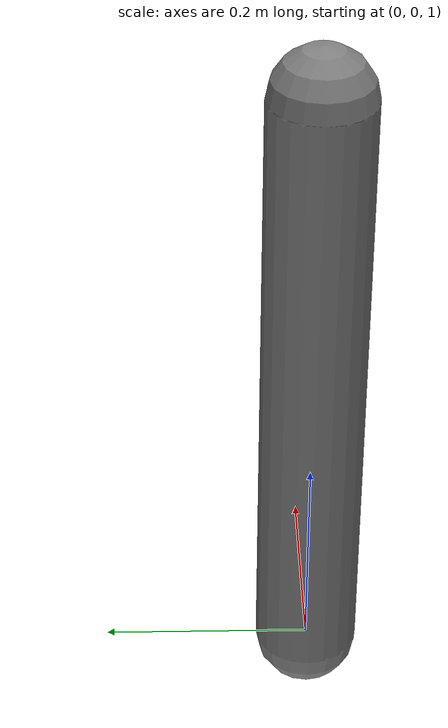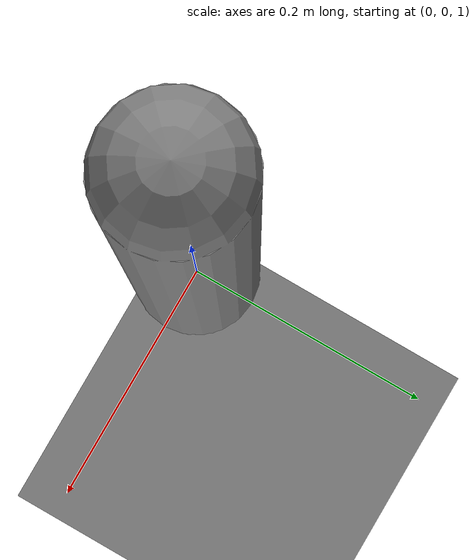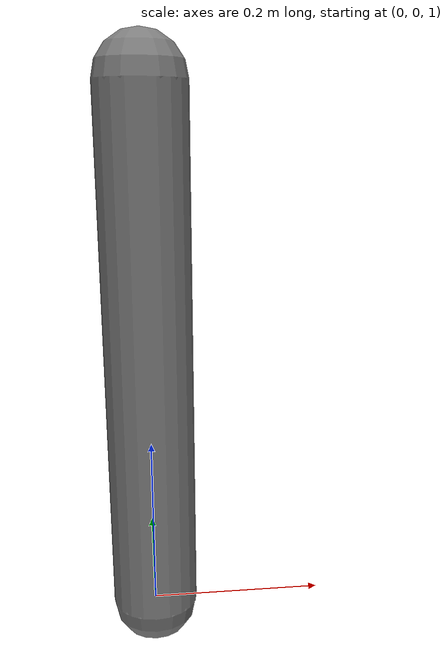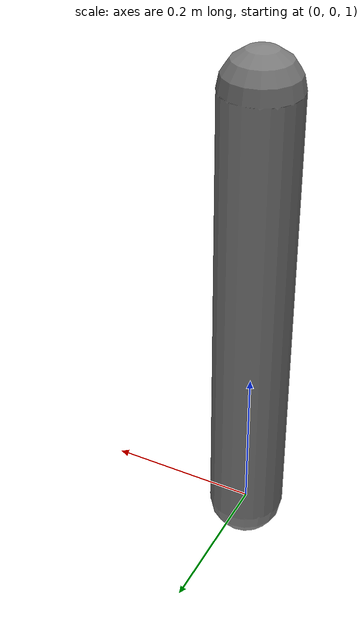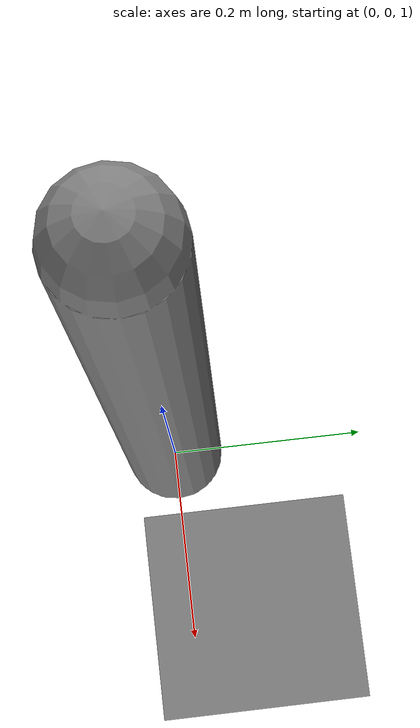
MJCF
<mujoco model="simple_arm">
  <option gravity="0 0 -9.81" timestep="0.01"/>

  <worldbody>
    <geom type="plane" size="5 5 0.1"/>

    <body name="arm" pos="0 0 1">
      <joint name="arm_joint" type="hinge" axis="0 1 0"/>
      <geom type="capsule" fromto="0 0 0 0 0 0.6" size="0.05" mass="1"/>
    </body>
  </worldbody>

  <actuator>
    <motor name="arm_motor" joint="arm_joint" ctrlrange="-1 1"/>
  </actuator>

  <sensor>
    <jointpos joint="arm_joint"/>
    <jointvel joint="arm_joint"/>
  </sensor>
</mujoco>
